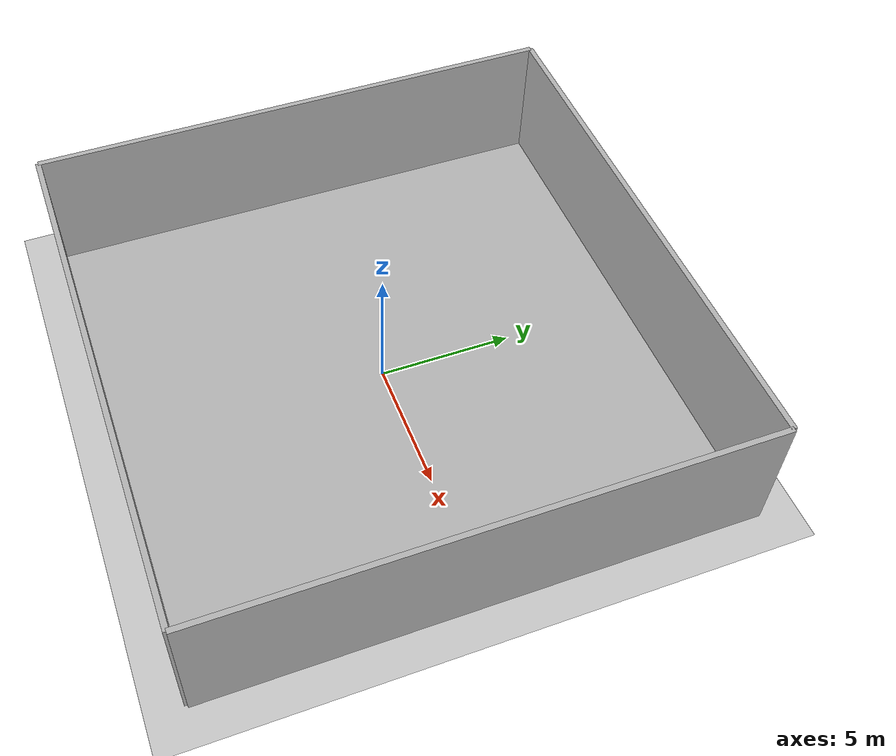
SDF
<?xml version="1.0" ?>

<sdf version="1.6">
  <world name="default">
    <scene>
      <ambient>0.4 0.4 0.4 1</ambient>
      <background>0.25 0.25 0.25 1</background>
      <shadows>false</shadows>
    </scene>
    <light type="directional" name="some_light">
      <diffuse>0.7 0.7 0.7 0</diffuse>
      <specular>1 1 1 0</specular>
      <direction>-1 -1 -1</direction>
    </light>

    <!-- ground plane -->
    <model name='ground_plane'>
      <static>1</static>
      <link name='link'>
        <collision name='collision'>
          <geometry>
            <plane>
              <normal>0 0 1</normal>
              <size>20 20</size>
            </plane>
          </geometry>
          <surface>
            <contact>
              <collide_bitmask>65535</collide_bitmask>
              <ode/>
            </contact>
            <friction>
              <ode>
                <mu>100</mu>
                <mu2>50</mu2>
              </ode>
              <torsional>
                <ode/>
              </torsional>
            </friction>
            <bounce/>
          </surface>
          <max_contacts>10</max_contacts>
        </collision>
        <visual name='visual'>
          <cast_shadows>0</cast_shadows>
          <geometry>
            <plane>
              <normal>0 0 1</normal>
              <size>20 20</size>
            </plane>
          </geometry>
          <material>
            <script>
              <uri>file://media/materials/scripts/gazebo.material</uri>
              <name>Gazebo/Grey</name>
            </script>
          </material>
        </visual>
        <self_collide>0</self_collide>
        <enable_wind>0</enable_wind>
        <kinematic>0</kinematic>
      </link>
    </model>

    <!-- Import warehouse -->
    <include>
      <uri>model://warehouse</uri>
      <static>true</static>
    </include>
  </world>
</sdf>

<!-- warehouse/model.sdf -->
<sdf version="1.6">
  <model name="warehouse">
    <include>
      <uri>model://warehouse_ground</uri>
      <static>true</static>
    </include>

    <!-- left wall -->
    <include>
      <!-- warehouse wall model path -->
      <uri>model://warehouse_wall</uri>
      <!-- Set the location where we want to spawn the model -->
      <pose>-10 0 0 0 0 1.57</pose>
      <name>left_wall</name>
      <static>true</static>
    </include>

    <!-- right wall -->
    <include>
      <uri>model://warehouse_wall</uri>
      <pose>10 0 0 0 0 1.57</pose>
      <name>right_wall</name>
      <static>true</static>
    </include>

    <!-- bottom wall -->
    <include>
      <uri>model://warehouse_wall</uri>
      <pose>0 -10 0 0 0 0</pose>
      <name>bottom_wall</name>
      <static>true</static>
    </include>

    <!-- top wall -->
    <include>
      <uri>model://warehouse_wall</uri>
      <pose>0 10 0 0 0 0</pose>
      <name>top_wall</name>
      <static>true</static>
    </include>
  </model>
</sdf>

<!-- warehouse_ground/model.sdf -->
<sdf version="1.5">
  <model name="warehouse_ground">
    <static>true</static>
    <link name="link">
      <visual name="visual">
        <cast_shadows>false</cast_shadows>
        <geometry>
          <box>
            <size>20 20 0.01</size>
          </box>
        </geometry>
        <material>
          <script>
            <uri>model://warehouse_ground/materials/scripts</uri>
            <uri>model://warehouse_ground/materials/textures</uri>
            <name>warehouse_ground</name>
          </script>
        </material>
      </visual>
    </link>
  </model>
</sdf>

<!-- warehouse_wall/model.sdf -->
<sdf version="1.6">
  <model name="warehouse_wall">
    <static>true</static>
    <link name="link">
      <!-- z position equals half heights -->
      <pose>0 0 2.5 0 0 0</pose>
      <collision name="collision">
        <geometry>
          <box>
            <size>20 0.2 5</size>
          </box>
        </geometry>
      </collision>
      <visual name="visual">
        <cast_shadows>false</cast_shadows>
        <geometry>
          <box>
            <size>20 0.2 5</size>
          </box>
        </geometry>
        <material>
          <script>
            <uri>model://warehouse_wall/materials/scripts</uri>
            <uri>model://warehouse_wall/materials/textures</uri>
            <name>warehouse_wall</name>
          </script>
        </material>
      </visual>
    </link>
  </model>
</sdf>
